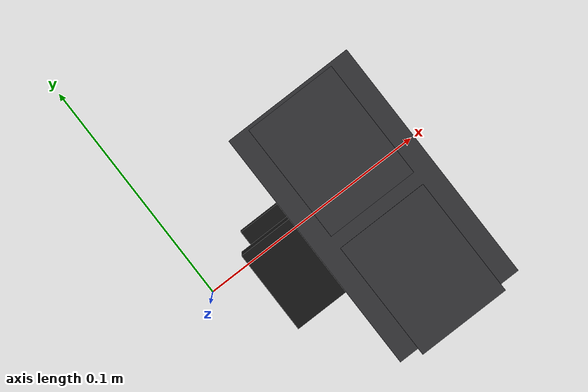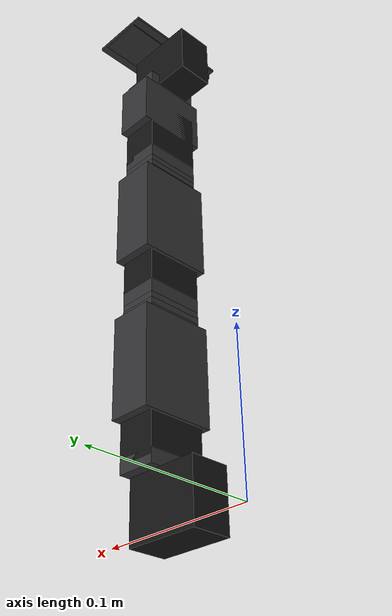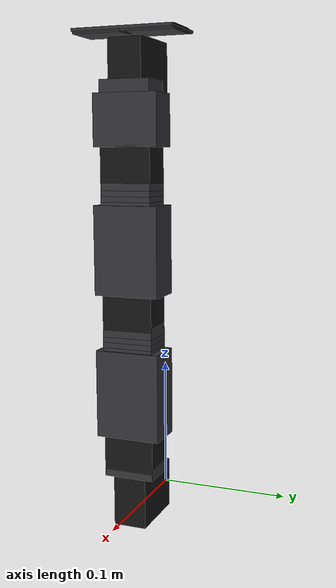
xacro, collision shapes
<?xml version="1.0" encoding="utf-8"?>
<!-- |    This document was autogenerated by xacro from pincher_arm.urdf.xacro         | -->
<!-- |    EDITING THIS FILE BY HAND IS NOT RECOMMENDED                                 | -->
<!-- Describe URDF for PhantomX Pincher Arm -->
<robot name="turtlebot_arm">
  <!-- We can configure joints velocity limit and lower/upper limits
          to allow access to different operational areas, e.g. left handed vs. right handed robot -->
  <!-- Included URDF Files -->
  <material name="White">
    <color rgba="0.87 0.90 0.87 1.0"/>
  </material>
  <material name="Black">
    <color rgba="0.08 0.08 0.08 1.0"/>
  </material>
  <material name="Gray">
    <color rgba="0.2 0.2 0.21 1.0"/>
  </material>
  <material name="Green">
    <color rgba="0.22 0.32 0.14 1.0"/>
  </material>
  <!-- As we don't have here a turtlebot base, add a base_link link as its location reference -->
  <link name="base_link"/>
  <link name="arm_base_link"/>
  <joint name="arm_base_joint" type="fixed">
    <origin xyz="0.06 0 0.01"/>
    <parent link="base_link"/>
    <child link="arm_base_link"/>
  </joint>
  <!-- fake gripper_link joint gives us a free servo!
         this makes us 5DOF and saves you $44.90
         that's a lot of coin! -->
  <link name="gripper_link"/>
  <joint name="gripper_link_joint" type="revolute">
    <origin rpy="0 -1.57 0" xyz="0 0 0.112"/>
    <parent link="arm_wrist_flex_link"/>
    <child link="gripper_link"/>
    <limit effort="30" lower="-3.14" upper="3.14" velocity="1"/>
    <axis xyz="1 0 0"/>
  </joint>
  <joint name="arm_shoulder_pan_servo_joint" type="fixed">
    <origin rpy="1.570795 0 1.570795" xyz="0 0 0"/>
    <parent link="arm_base_link"/>
    <child link="arm_shoulder_pan_servo_link"/>
  </joint>
  <link name="arm_shoulder_pan_servo_link">
    <inertial>
      <mass value="0.055"/>
      <origin xyz="0 0 0"/>
      <inertia ixx="0.000017012" ixy="0.0" ixz="0.0" iyy="0.000013258" iyz="0.0" izz="0.000009483"/>
    </inertial>
    <visual>
      <origin rpy="0 0 0" xyz=" 0 0 0 "/>
      <geometry>
        <mesh filename="package://pxpincher_description/meshes/ax12_box.stl" scale="0.001 0.001 0.001"/>
      </geometry>
      <material name="Black"/>
    </visual>
    <collision>
      <origin rpy="0 0 0" xyz="0.0 0.0 -0.01241"/>
      <geometry>
        <box size="0.025 0.038 0.04762"/>
      </geometry>
    </collision>
  </link>
  <gazebo reference="arm_shoulder_pan_servo_link">
    <material>Gazebo/Black</material>
    <selfCollide>true</selfCollide>
    <gravity>true</gravity>
  </gazebo>
  <joint name="arm_shoulder_pan_joint" type="revolute">
    <origin rpy="-1.570795 1.570795 3.14159" xyz="0 0.019 0"/>
    <axis xyz="0 0 -1"/>
    <limit effort="30" lower="-1.17" upper="1.43" velocity="1.571"/>
    <dynamics friction="0.13"/>
    <parent link="arm_shoulder_pan_servo_link"/>
    <child link="arm_shoulder_pan_link"/>
  </joint>
  <link name="arm_shoulder_pan_link">
    <inertial>
      <mass value="0.008"/>
      <origin xyz="0 0 0"/>
      <inertia ixx="0.000001" ixy="0.0" ixz="0.0" iyy="0.000001" iyz="0.0" izz="0.000001"/>
    </inertial>
    <visual>
      <origin rpy="0 0 0" xyz=" 0 0 0 "/>
      <geometry>
        <mesh filename="package://pxpincher_description/meshes/F3.stl" scale="0.001 0.001 0.001"/>
      </geometry>
      <material name="Gray"/>
    </visual>
    <collision>
      <origin rpy="0 0 0" xyz="0.0 0.0 -0.0045"/>
      <geometry>
        <box size="0.025 0.038 0.009"/>
      </geometry>
    </collision>
  </link>
  <gazebo reference="arm_shoulder_pan_link">
    <material>Gazebo/Gray</material>
    <selfCollide>true</selfCollide>
    <gravity>true</gravity>
  </gazebo>
  <joint name="arm_shoulder_lift_servo_joint" type="fixed">
    <origin rpy="0 3.14159 0" xyz="0 0 -0.0415"/>
    <parent link="arm_shoulder_pan_link"/>
    <child link="arm_shoulder_lift_servo_link"/>
  </joint>
  <link name="arm_shoulder_lift_servo_link">
    <inertial>
      <mass value="0.055"/>
      <origin xyz="0 0 0"/>
      <inertia ixx="0.000017012" ixy="0.0" ixz="0.0" iyy="0.000013258" iyz="0.0" izz="0.000009483"/>
    </inertial>
    <visual>
      <origin rpy="0 0 0" xyz=" 0 0 0 "/>
      <geometry>
        <mesh filename="package://pxpincher_description/meshes/ax12_box.stl" scale="0.001 0.001 0.001"/>
      </geometry>
      <material name="Black"/>
    </visual>
    <collision>
      <origin rpy="0 0 0" xyz="0.0 0.0 -0.01241"/>
      <geometry>
        <box size="0.025 0.038 0.04762"/>
      </geometry>
    </collision>
  </link>
  <gazebo reference="arm_shoulder_lift_servo_link">
    <material>Gazebo/Black</material>
    <selfCollide>true</selfCollide>
    <gravity>true</gravity>
  </gazebo>
  <joint name="arm_shoulder_lift_joint" type="revolute">
    <origin rpy="0 0 0" xyz="0 0 0"/>
    <axis xyz="0 1 0"/>
    <limit effort="30" lower="0" upper="2.0" velocity="1.571"/>
    <dynamics friction="0.13"/>
    <parent link="arm_shoulder_lift_servo_link"/>
    <child link="arm_shoulder_lift_link"/>
  </joint>
  <link name="arm_shoulder_lift_link">
    <inertial>
      <mass value="0.016"/>
      <origin xyz="0 0 0"/>
      <inertia ixx="0.000001" ixy="0.0" ixz="0.0" iyy="0.000001" iyz="0.0" izz="0.000001"/>
    </inertial>
    <visual>
      <origin rpy="0 0 0" xyz=" 0 0 0 "/>
      <geometry>
        <mesh filename="package://pxpincher_description/meshes/F4.stl" scale="0.001 0.001 0.001"/>
      </geometry>
      <material name="Gray"/>
    </visual>
    <collision>
      <origin rpy="0 0 0" xyz="0.0 0.0 0.0215"/>
      <geometry>
        <box size="0.028 0.0485 0.065"/>
      </geometry>
    </collision>
  </link>
  <gazebo reference="arm_shoulder_lift_link">
    <material>Gazebo/Gray</material>
    <selfCollide>true</selfCollide>
    <gravity>true</gravity>
  </gazebo>
  <joint name="arm_shoulder_F10_0_joint" type="fixed">
    <origin rpy="0 0 0" xyz="0 0 0.0545"/>
    <parent link="arm_shoulder_lift_link"/>
    <child link="arm_shoulder_F10_0_link"/>
  </joint>
  <link name="arm_shoulder_F10_0_link">
    <inertial>
      <mass value="0.004"/>
      <origin xyz="0 0 0"/>
      <inertia ixx="0.000001" ixy="0.0" ixz="0.0" iyy="0.000001" iyz="0.0" izz="0.000001"/>
    </inertial>
    <visual>
      <origin rpy="0 0 0" xyz=" 0 0 0 "/>
      <geometry>
        <mesh filename="package://pxpincher_description/meshes/F10.stl" scale="0.001 0.001 0.001"/>
      </geometry>
      <material name="Gray"/>
    </visual>
    <collision>
      <origin rpy="0 0 0" xyz="0.0 0.0 0.0"/>
      <geometry>
        <box size="0.025 0.038 0.004"/>
      </geometry>
    </collision>
  </link>
  <gazebo reference="arm_shoulder_F10_0_link">
    <material>Gazebo/Gray</material>
    <selfCollide>true</selfCollide>
    <gravity>true</gravity>
  </gazebo>
  <joint name="arm_shoulder_F10_1_joint" type="fixed">
    <origin rpy="0 0 0" xyz="0 0 0.004"/>
    <parent link="arm_shoulder_F10_0_link"/>
    <child link="arm_shoulder_F10_1_link"/>
  </joint>
  <link name="arm_shoulder_F10_1_link">
    <inertial>
      <mass value="0.004"/>
      <origin xyz="0 0 0"/>
      <inertia ixx="0.000001" ixy="0.0" ixz="0.0" iyy="0.000001" iyz="0.0" izz="0.000001"/>
    </inertial>
    <visual>
      <origin rpy="0 0 0" xyz=" 0 0 0 "/>
      <geometry>
        <mesh filename="package://pxpincher_description/meshes/F10.stl" scale="0.001 0.001 0.001"/>
      </geometry>
      <material name="Gray"/>
    </visual>
    <collision>
      <origin rpy="0 0 0" xyz="0.0 0.0 0.0"/>
      <geometry>
        <box size="0.025 0.038 0.004"/>
      </geometry>
    </collision>
  </link>
  <gazebo reference="arm_shoulder_F10_1_link">
    <material>Gazebo/Gray</material>
    <selfCollide>true</selfCollide>
    <gravity>true</gravity>
  </gazebo>
  <joint name="arm_shoulder_F10_2_joint" type="fixed">
    <origin rpy="0 0 0" xyz="0 0 0.004"/>
    <parent link="arm_shoulder_F10_1_link"/>
    <child link="arm_shoulder_F10_2_link"/>
  </joint>
  <link name="arm_shoulder_F10_2_link">
    <inertial>
      <mass value="0.004"/>
      <origin xyz="0 0 0"/>
      <inertia ixx="0.000001" ixy="0.0" ixz="0.0" iyy="0.000001" iyz="0.0" izz="0.000001"/>
    </inertial>
    <visual>
      <origin rpy="0 0 0" xyz=" 0 0 0 "/>
      <geometry>
        <mesh filename="package://pxpincher_description/meshes/F10.stl" scale="0.001 0.001 0.001"/>
      </geometry>
      <material name="Gray"/>
    </visual>
    <collision>
      <origin rpy="0 0 0" xyz="0.0 0.0 0.0"/>
      <geometry>
        <box size="0.025 0.038 0.004"/>
      </geometry>
    </collision>
  </link>
  <gazebo reference="arm_shoulder_F10_2_link">
    <material>Gazebo/Gray</material>
    <selfCollide>true</selfCollide>
    <gravity>true</gravity>
  </gazebo>
  <joint name="arm_shoulder_F3_0_joint" type="fixed">
    <origin rpy="0 3.14159 0" xyz="0 0 0.002"/>
    <parent link="arm_shoulder_F10_2_link"/>
    <child link="arm_shoulder_F3_0_link"/>
  </joint>
  <link name="arm_shoulder_F3_0_link">
    <inertial>
      <mass value="0.005"/>
      <origin xyz="0 0 0"/>
      <inertia ixx="0.000001" ixy="0.0" ixz="0.0" iyy="0.000001" iyz="0.0" izz="0.000001"/>
    </inertial>
    <visual>
      <origin rpy="0 0 0" xyz=" 0 0 0 "/>
      <geometry>
        <mesh filename="package://pxpincher_description/meshes/F3.stl" scale="0.001 0.001 0.001"/>
      </geometry>
      <material name="Gray"/>
    </visual>
    <collision>
      <origin rpy="0 0 0" xyz="0.0 0.0 -0.0045"/>
      <geometry>
        <box size="0.025 0.038 0.009"/>
      </geometry>
    </collision>
  </link>
  <gazebo reference="arm_shoulder_F3_0_link">
    <material>Gazebo/Gray</material>
    <selfCollide>true</selfCollide>
    <gravity>true</gravity>
  </gazebo>
  <joint name="arm_elbow_flex_servo_joint" type="fixed">
    <origin rpy="0 3.14159 0" xyz="0 0 -0.0415"/>
    <parent link="arm_shoulder_F3_0_link"/>
    <child link="arm_elbow_flex_servo_link"/>
  </joint>
  <link name="arm_elbow_flex_servo_link">
    <inertial>
      <mass value="0.055"/>
      <origin xyz="0 0 0"/>
      <inertia ixx="0.000017012" ixy="0.0" ixz="0.0" iyy="0.000013258" iyz="0.0" izz="0.000009483"/>
    </inertial>
    <visual>
      <origin rpy="0 0 0" xyz=" 0 0 0 "/>
      <geometry>
        <mesh filename="package://pxpincher_description/meshes/ax12_box.stl" scale="0.001 0.001 0.001"/>
      </geometry>
      <material name="Black"/>
    </visual>
    <collision>
      <origin rpy="0 0 0" xyz="0.0 0.0 -0.01241"/>
      <geometry>
        <box size="0.025 0.038 0.04762"/>
      </geometry>
    </collision>
  </link>
  <gazebo reference="arm_elbow_flex_servo_link">
    <material>Gazebo/Black</material>
    <selfCollide>true</selfCollide>
    <gravity>true</gravity>
  </gazebo>
  <joint name="arm_elbow_flex_joint" type="revolute">
    <origin rpy="0 0 0" xyz="0 0 0"/>
    <axis xyz="0 1 0"/>
    <limit effort="30" lower="-2.17" upper="0.01" velocity="1.571"/>
    <dynamics friction="0.13"/>
    <parent link="arm_elbow_flex_servo_link"/>
    <child link="arm_elbow_flex_link"/>
  </joint>
  <link name="arm_elbow_flex_link">
    <inertial>
      <mass value="0.016"/>
      <origin xyz="0 0 0"/>
      <inertia ixx="0.000001" ixy="0.0" ixz="0.0" iyy="0.000001" iyz="0.0" izz="0.000001"/>
    </inertial>
    <visual>
      <origin rpy="0 0 0" xyz=" 0 0 0 "/>
      <geometry>
        <mesh filename="package://pxpincher_description/meshes/F4.stl" scale="0.001 0.001 0.001"/>
      </geometry>
      <material name="Gray"/>
    </visual>
    <collision>
      <origin rpy="0 0 0" xyz="0.0 0.0 0.0215"/>
      <geometry>
        <box size="0.028 0.0485 0.065"/>
      </geometry>
    </collision>
  </link>
  <gazebo reference="arm_elbow_flex_link">
    <material>Gazebo/Gray</material>
    <selfCollide>true</selfCollide>
    <gravity>true</gravity>
  </gazebo>
  <joint name="arm_elbow_F10_0_joint" type="fixed">
    <origin rpy="0 0 0" xyz="0 0 0.0545"/>
    <parent link="arm_elbow_flex_link"/>
    <child link="arm_elbow_F10_0_link"/>
  </joint>
  <link name="arm_elbow_F10_0_link">
    <inertial>
      <mass value="0.004"/>
      <origin xyz="0 0 0"/>
      <inertia ixx="0.000001" ixy="0.0" ixz="0.0" iyy="0.000001" iyz="0.0" izz="0.000001"/>
    </inertial>
    <visual>
      <origin rpy="0 0 0" xyz=" 0 0 0 "/>
      <geometry>
        <mesh filename="package://pxpincher_description/meshes/F10.stl" scale="0.001 0.001 0.001"/>
      </geometry>
      <material name="Gray"/>
    </visual>
    <collision>
      <origin rpy="0 0 0" xyz="0.0 0.0 0.0"/>
      <geometry>
        <box size="0.025 0.038 0.004"/>
      </geometry>
    </collision>
  </link>
  <gazebo reference="arm_elbow_F10_0_link">
    <material>Gazebo/Gray</material>
    <selfCollide>true</selfCollide>
    <gravity>true</gravity>
  </gazebo>
  <joint name="arm_elbow_F10_1_joint" type="fixed">
    <origin rpy="0 0 0" xyz="0 0 0.004"/>
    <parent link="arm_elbow_F10_0_link"/>
    <child link="arm_elbow_F10_1_link"/>
  </joint>
  <link name="arm_elbow_F10_1_link">
    <inertial>
      <mass value="0.004"/>
      <origin xyz="0 0 0"/>
      <inertia ixx="0.000001" ixy="0.0" ixz="0.0" iyy="0.000001" iyz="0.0" izz="0.000001"/>
    </inertial>
    <visual>
      <origin rpy="0 0 0" xyz=" 0 0 0 "/>
      <geometry>
        <mesh filename="package://pxpincher_description/meshes/F10.stl" scale="0.001 0.001 0.001"/>
      </geometry>
      <material name="Gray"/>
    </visual>
    <collision>
      <origin rpy="0 0 0" xyz="0.0 0.0 0.0"/>
      <geometry>
        <box size="0.025 0.038 0.004"/>
      </geometry>
    </collision>
  </link>
  <gazebo reference="arm_elbow_F10_1_link">
    <material>Gazebo/Gray</material>
    <selfCollide>true</selfCollide>
    <gravity>true</gravity>
  </gazebo>
  <joint name="arm_elbow_F10_2_joint" type="fixed">
    <origin rpy="0 0 0" xyz="0 0 0.004"/>
    <parent link="arm_elbow_F10_1_link"/>
    <child link="arm_elbow_F10_2_link"/>
  </joint>
  <link name="arm_elbow_F10_2_link">
    <inertial>
      <mass value="0.004"/>
      <origin xyz="0 0 0"/>
      <inertia ixx="0.000001" ixy="0.0" ixz="0.0" iyy="0.000001" iyz="0.0" izz="0.000001"/>
    </inertial>
    <visual>
      <origin rpy="0 0 0" xyz=" 0 0 0 "/>
      <geometry>
        <mesh filename="package://pxpincher_description/meshes/F10.stl" scale="0.001 0.001 0.001"/>
      </geometry>
      <material name="Gray"/>
    </visual>
    <collision>
      <origin rpy="0 0 0" xyz="0.0 0.0 0.0"/>
      <geometry>
        <box size="0.025 0.038 0.004"/>
      </geometry>
    </collision>
  </link>
  <gazebo reference="arm_elbow_F10_2_link">
    <material>Gazebo/Gray</material>
    <selfCollide>true</selfCollide>
    <gravity>true</gravity>
  </gazebo>
  <joint name="arm_elbow_F3_0_joint" type="fixed">
    <origin rpy="0 3.14159 0" xyz="0 0 0.002"/>
    <parent link="arm_elbow_F10_2_link"/>
    <child link="arm_elbow_F3_0_link"/>
  </joint>
  <link name="arm_elbow_F3_0_link">
    <inertial>
      <mass value="0.005"/>
      <origin xyz="0 0 0"/>
      <inertia ixx="0.000001" ixy="0.0" ixz="0.0" iyy="0.000001" iyz="0.0" izz="0.000001"/>
    </inertial>
    <visual>
      <origin rpy="0 0 0" xyz=" 0 0 0 "/>
      <geometry>
        <mesh filename="package://pxpincher_description/meshes/F3.stl" scale="0.001 0.001 0.001"/>
      </geometry>
      <material name="Gray"/>
    </visual>
    <collision>
      <origin rpy="0 0 0" xyz="0.0 0.0 -0.0045"/>
      <geometry>
        <box size="0.025 0.038 0.009"/>
      </geometry>
    </collision>
  </link>
  <gazebo reference="arm_elbow_F3_0_link">
    <material>Gazebo/Gray</material>
    <selfCollide>true</selfCollide>
    <gravity>true</gravity>
  </gazebo>
  <joint name="arm_wrist_flex_servo_joint" type="fixed">
    <origin rpy="0 3.14159 0" xyz="0 0 -0.0415"/>
    <parent link="arm_elbow_F3_0_link"/>
    <child link="arm_wrist_flex_servo_link"/>
  </joint>
  <link name="arm_wrist_flex_servo_link">
    <inertial>
      <mass value="0.055"/>
      <origin xyz="0 0 0"/>
      <inertia ixx="0.000017012" ixy="0.0" ixz="0.0" iyy="0.000013258" iyz="0.0" izz="0.000009483"/>
    </inertial>
    <visual>
      <origin rpy="0 0 0" xyz=" 0 0 0 "/>
      <geometry>
        <mesh filename="package://pxpincher_description/meshes/ax12_box.stl" scale="0.001 0.001 0.001"/>
      </geometry>
      <material name="Black"/>
    </visual>
    <collision>
      <origin rpy="0 0 0" xyz="0.0 0.0 -0.01241"/>
      <geometry>
        <box size="0.025 0.038 0.04762"/>
      </geometry>
    </collision>
  </link>
  <gazebo reference="arm_wrist_flex_servo_link">
    <material>Gazebo/Black</material>
    <selfCollide>true</selfCollide>
    <gravity>true</gravity>
  </gazebo>
  <joint name="arm_wrist_flex_joint" type="revolute">
    <origin rpy="0 0 0" xyz="0 0 0"/>
    <axis xyz="0 1 0"/>
    <limit effort="30" lower="-1.25" upper="1.68" velocity="1.571"/>
    <dynamics friction="0.13"/>
    <parent link="arm_wrist_flex_servo_link"/>
    <child link="arm_wrist_flex_link"/>
  </joint>
  <link name="arm_wrist_flex_link">
    <inertial>
      <mass value="0.010"/>
      <origin xyz="0 0 0"/>
      <inertia ixx="0.000001" ixy="0.0" ixz="0.0" iyy="0.000001" iyz="0.0" izz="0.000001"/>
    </inertial>
    <visual>
      <origin rpy="0 0 0" xyz=" 0 0 0 "/>
      <geometry>
        <mesh filename="package://pxpincher_description/meshes/F2.stl" scale="0.001 0.001 0.001"/>
      </geometry>
      <material name="Gray"/>
    </visual>
    <collision>
      <origin rpy="0 0 0" xyz="0.0 0.0 0.00775"/>
      <geometry>
        <box size="0.025 0.0485 0.0375"/>
      </geometry>
    </collision>
  </link>
  <gazebo reference="arm_wrist_flex_link">
    <material>Gazebo/Gray</material>
    <selfCollide>true</selfCollide>
    <gravity>true</gravity>
  </gazebo>
  <joint name="arm_wrist_F3_0_joint" type="fixed">
    <origin rpy="0 3.14159 -3.14159" xyz="0 0 0.0265"/>
    <parent link="arm_wrist_flex_link"/>
    <child link="arm_wrist_F3_0_link"/>
  </joint>
  <link name="arm_wrist_F3_0_link">
    <inertial>
      <mass value="0.005"/>
      <origin xyz="0 0 0"/>
      <inertia ixx="0.000001" ixy="0.0" ixz="0.0" iyy="0.000001" iyz="0.0" izz="0.000001"/>
    </inertial>
    <visual>
      <origin rpy="0 0 0" xyz=" 0 0 0 "/>
      <geometry>
        <mesh filename="package://pxpincher_description/meshes/F3.stl" scale="0.001 0.001 0.001"/>
      </geometry>
      <material name="Gray"/>
    </visual>
    <collision>
      <origin rpy="0 0 0" xyz="0.0 0.0 -0.0045"/>
      <geometry>
        <box size="0.025 0.038 0.009"/>
      </geometry>
    </collision>
  </link>
  <gazebo reference="arm_wrist_F3_0_link">
    <material>Gazebo/Gray</material>
    <selfCollide>true</selfCollide>
    <gravity>true</gravity>
  </gazebo>
  <joint name="gripper_servo_joint" type="fixed">
    <origin rpy="1.570795 3.14159 1.570795" xyz="0 0 -0.019"/>
    <parent link="arm_wrist_F3_0_link"/>
    <child link="gripper_servo_link"/>
  </joint>
  <link name="gripper_servo_link">
    <inertial>
      <mass value="0.055"/>
      <origin xyz="0 0 0"/>
      <inertia ixx="0.000017012" ixy="0.0" ixz="0.0" iyy="0.000013258" iyz="0.0" izz="0.000009483"/>
    </inertial>
    <visual>
      <origin rpy="0 0 0" xyz=" 0 0 0 "/>
      <geometry>
        <mesh filename="package://pxpincher_description/meshes/ax12_box.stl" scale="0.001 0.001 0.001"/>
      </geometry>
      <material name="Black"/>
    </visual>
    <collision>
      <origin rpy="0 0 0" xyz="0.0 0.0 -0.01241"/>
      <geometry>
        <box size="0.025 0.038 0.04762"/>
      </geometry>
    </collision>
  </link>
  <gazebo reference="gripper_servo_link">
    <material>Gazebo/Black</material>
    <selfCollide>true</selfCollide>
    <gravity>true</gravity>
  </gazebo>
  <joint name="gripper_finger_base_joint" type="fixed">
    <origin rpy="1.570795 -3.14159 1.570795" xyz="0.015  0.038 0"/>
    <parent link="gripper_servo_link"/>
    <child link="gripper_finger_base_link"/>
  </joint>
  <link name="gripper_finger_base_link">
    <inertial>
      <mass value="0.00001"/>
      <origin xyz="0 0 0"/>
      <inertia ixx="1.0" ixy="0.0" ixz="0.0" iyy="1.0" iyz="0.0" izz="1.0"/>
    </inertial>
    <visual>
      <origin rpy="3.14159 -1.570795 1.570795" xyz="0.016 0 -.015 "/>
      <geometry>
        <mesh filename="package://pxpincher_description/meshes/pincher_finger_base.stl" scale=".01 .01 .01"/>
      </geometry>
      <material name="Gray"/>
    </visual>
    <collision>
      <origin rpy="0 0 0" xyz="0.015 0 -0.0135"/>
      <geometry>
        <box size="0.002 0.040 0.075"/>
      </geometry>
    </collision>
  </link>
  <gazebo reference="gripper_finger_base_link">
    <material>Gazebo/Gray</material>
    <selfCollide>true</selfCollide>
    <gravity>true</gravity>
  </gazebo>
  <!-- Finger 1 -->
  <!-- Modifications by C. Roesmann: Instead of changing the arbotix driver to distinguish between a prismatic and a revolute joint, we do  the conversion here using a mimic. -->
  <joint name="gripper_joint" type="prismatic">
    <origin rpy="0 0 0" xyz="0 0 0"/>
    <axis xyz="1 0 0"/>
    <limit effort="30" lower="-0.8" upper="0.8" velocity="0.5"/>
    <!--lower="0.002" upper="0.031"-->
    <parent link="gripper_servo_link"/>
    <child link="link_revolute_to_prismatic_virtual1"/>
  </joint>
  <link name="link_revolute_to_prismatic_virtual1"/>
  <joint name="gripper_joint_prismatic1" type="prismatic">
    <origin rpy="0 0 0" xyz="0 0 0"/>
    <axis xyz="1 0 0"/>
    <limit effort="30" lower="-0.01" upper="0.0" velocity="0.5"/>
    <parent link="gripper_servo_link"/>
    <child link="gripper_active_link"/>
    <mimic joint="gripper_joint" multiplier="0.01" offset="0.029"/>
  </joint>
  <link name="gripper_active_link">
    <inertial>
      <mass value="0.00001"/>
      <origin xyz="0 0 0"/>
      <inertia ixx="1.0" ixy="0.0" ixz="0.0" iyy="1.0" iyz="0.0" izz="1.0"/>
    </inertial>
    <visual>
      <origin rpy="-1.570795 0 0" xyz="-0.02 0.023 0"/>
      <geometry>
        <mesh filename="package://pxpincher_description/meshes/pincher_finger.stl" scale=".01 .01 .01"/>
      </geometry>
      <material name="Gray"/>
    </visual>
    <collision>
      <origin rpy="-1.570795 0 0" xyz="-0.02 0.023 0"/>
      <geometry>
        <box size="0.036 0.028 0.004"/>
      </geometry>
    </collision>
  </link>
  <gazebo reference="gripper_active_link">
    <material>Gazebo/Gray</material>
    <selfCollide>true</selfCollide>
    <gravity>true</gravity>
  </gazebo>
  <!-- Finger 2 -->
  <!-- Note: currently static but should be a Mimic of Finger 1 -->
  <link name="gripper_active2_link">
    <inertial>
      <mass value="0.00001"/>
      <origin xyz="0 0 0"/>
      <inertia ixx="1.0" ixy="0.0" ixz="0.0" iyy="1.0" iyz="0.0" izz="1.0"/>
    </inertial>
    <visual>
      <origin rpy="-1.570795 3.14159 0" xyz="0.02 0.023 0"/>
      <geometry>
        <mesh filename="package://pxpincher_description/meshes/pincher_finger.stl" scale=".01 .01 .01"/>
      </geometry>
      <material name="Gray"/>
    </visual>
    <collision>
      <origin rpy="-1.570795 3.14159 0" xyz="0.02 0.023 0"/>
      <geometry>
        <box size="0.036 0.028 0.004"/>
      </geometry>
    </collision>
  </link>
  <gazebo reference="gripper_active2_link">
    <material>Gazebo/Gray</material>
    <selfCollide>true</selfCollide>
    <gravity>true</gravity>
  </gazebo>
  <!-- Using Mimic -->
  <!-- gripper 2 joint -->
  <!-- Changes by C. Roesmann -->
  <joint name="gripper2_joint" type="prismatic">
    <origin rpy="0 0 0" xyz="0 0 0"/>
    <axis xyz="1 0 0"/>
    <limit effort="30" lower="0.0" upper="0.02" velocity="0.5"/>
    <parent link="gripper_servo_link"/>
    <child link="gripper_active2_link"/>
    <mimic joint="gripper_joint" multiplier="-0.01" offset="-0.029"/>
  </joint>
  <gazebo reference="gripper_active_link">
    <gravity>false</gravity>
  </gazebo>
  <gazebo reference="gripper_active2_link">
    <gravity>false</gravity>
  </gazebo>
  <!-- Phantomx Arm mount/Controllerboard link-->
  <joint name="arm_mount_joint" type="fixed">
    <!--origin xyz="-0.09 -0.06 -0.105" rpy="0 0 0"/-->
    <origin rpy="0 0 0" xyz="0.04 0.0 -0.065"/>
    <parent link="arm_base_link"/>
    <child link="arm_mount_link"/>
    <axis xyz="0 0 1"/>
  </joint>
  <link name="arm_mount_link">
    <visual>
      <!--origin xyz="0.18 -0.01 0.05" rpy="0 0 7.85"/-->
      <origin rpy="0 0 1.57" xyz="0.091 -0.1 0.0"/>
      <geometry>
        <mesh filename="package://pxpincher_description/meshes/arm_mount.stl" scale="0.01 0.01 0.01"/>
      </geometry>
      <material name="Gray"/>
    </visual>
  </link>
</robot>
